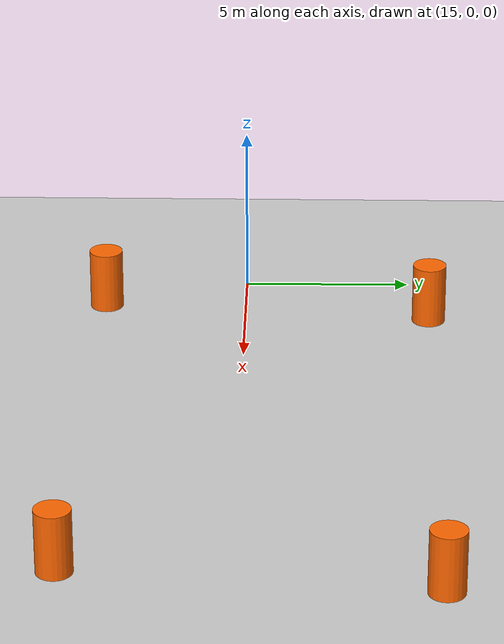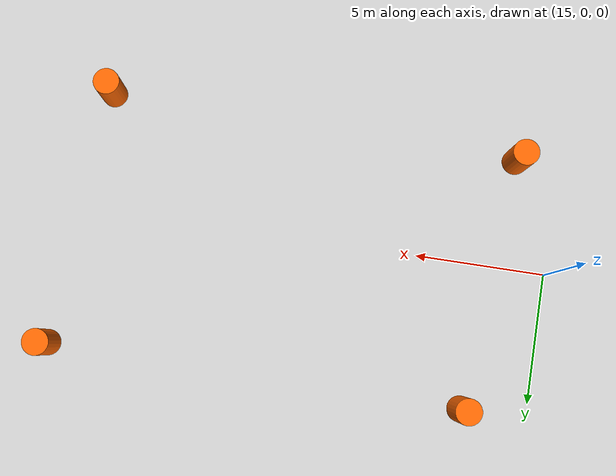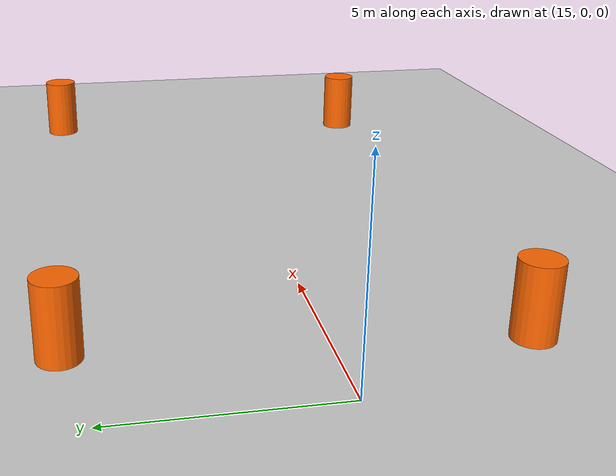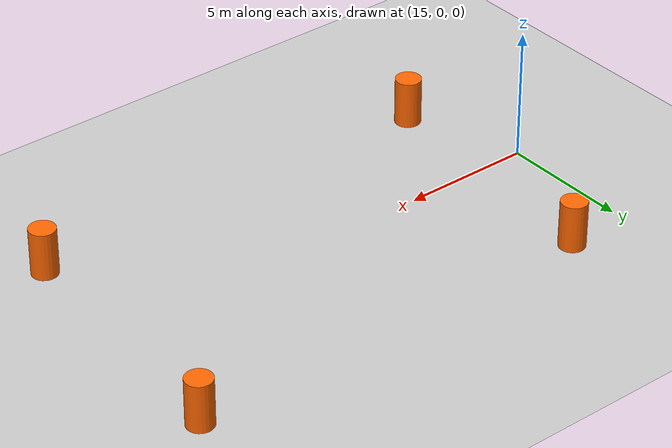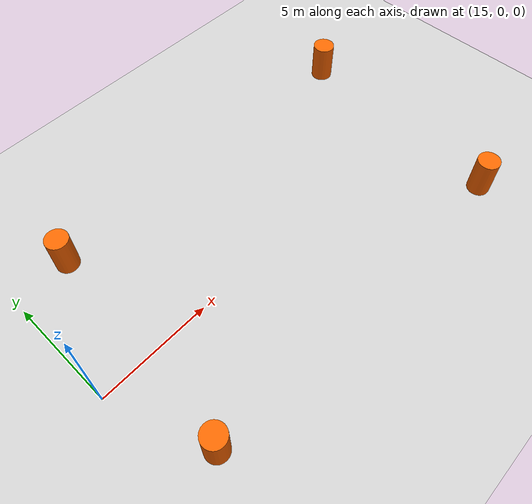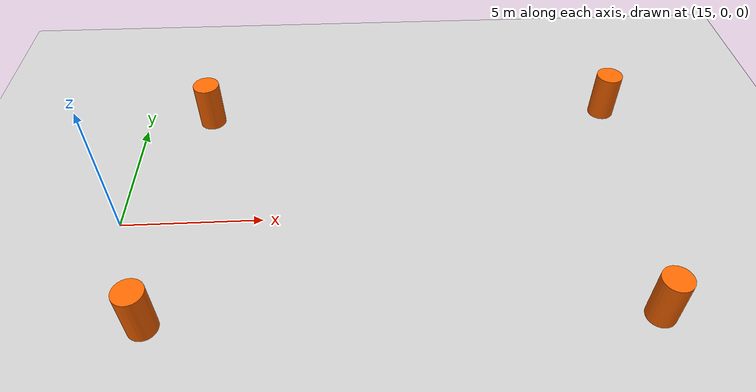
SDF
<sdf version="1.7">
 <world name="default">
  <light name="sun" type="directional">
   <pose>0 0 10 0 -0 0</pose>
   <diffuse>0.8 0.8 0.8 1</diffuse>
   <specular>0.2 0.2 0.2 1</specular>
   <attenuation>
    <range>1000</range>
    <constant>0.9</constant>
    <linear>0.01</linear>
    <quadratic>0.001</quadratic>
   </attenuation>
   <direction>-0.5 0.1 -0.9</direction>
   <spot><inner_angle>0</inner_angle><outer_angle>0</outer_angle><falloff>0</falloff></spot>
  </light>
  <model name="ground_plane">
   <static>1</static>
   <link name="link">
    <collision name="collision">
     <geometry><plane><normal>0 0 1</normal><size>100 100</size></plane></geometry>
     <surface>
      <contact><collide_bitmask>65535</collide_bitmask></contact>
      <friction><ode><mu>100</mu><mu2>50</mu2></ode></friction>
     </surface>
    </collision>
    <visual name="visual">
     <cast_shadows>0</cast_shadows>
     <geometry><plane><normal>0 0 1</normal><size>100 100</size></plane></geometry>
     <material>
      <script><uri>file://media/materials/scripts/gazebo.material</uri><name>Gazebo/Grey</name></script>
     </material>
    </visual>
   </link>
  </model>
  <gravity>0 0 -9.8</gravity>
  <magnetic_field>6e-06 2.3e-05 -4.2e-05</magnetic_field>
  <atmosphere type="adiabatic"/>
  <physics type="ode">
   <max_step_size>0.001</max_step_size>
   <real_time_factor>1</real_time_factor>
   <real_time_update_rate>1000</real_time_update_rate>
  </physics>
  <scene><ambient>0.4 0.4 0.4 1</ambient><background>0.7 0.7 0.7 1</background><shadows>1</shadows></scene>
  <audio><device>default</device></audio>
  <spherical_coordinates>
   <surface_model>EARTH_WGS84</surface_model>
   <latitude_deg>0</latitude_deg>
   <longitude_deg>0</longitude_deg>
   <elevation>0</elevation>
   <heading_deg>0</heading_deg>
  </spherical_coordinates>
  <model name="unit_cylinder">
   <pose>17.5352 5.57982 0.919527 0 0 -1e-06</pose>
   <link name="link">
    <inertial>
     <mass>1</mass>
     <inertia><ixx>0.145833</ixx><ixy>0</ixy><ixz>0</ixz><iyy>0.145833</iyy><iyz>0</iyz><izz>0.125</izz></inertia>
    </inertial>
    <collision name="collision">
     <geometry><cylinder><radius>0.5</radius><length>1.83907</length></cylinder></geometry>
    </collision>
    <visual name="visual">
     <geometry><cylinder><radius>0.5</radius><length>1.83907</length></cylinder></geometry>
     <material><diffuse>1 0.4 0 1</diffuse><specular>0.3 0.2 0.1 1</specular></material>
    </visual>
   </link>
  </model>
  <model name="unit_cylinder_clone">
   <pose>16.6538 -4.2826 0.919527 0 0 -1e-06</pose>
   <link name="link">
    <inertial>
     <mass>1</mass>
     <inertia><ixx>0.145833</ixx><ixy>0</ixy><ixz>0</ixz><iyy>0.145833</iyy><iyz>0</iyz><izz>0.125</izz></inertia>
    </inertial>
    <collision name="collision">
     <geometry><cylinder><radius>0.5</radius><length>1.83907</length></cylinder></geometry>
    </collision>
    <visual name="visual">
     <geometry><cylinder><radius>0.5</radius><length>1.83907</length></cylinder></geometry>
     <material><diffuse>1 0.4 0 1</diffuse><specular>0.3 0.2 0.1 1</specular></material>
    </visual>
   </link>
  </model>
  <model name="unit_cylinder_clone_clone">
   <pose>32.7171 -4.55793 0.919528 0 0 -1e-06</pose>
   <link name="link">
    <inertial>
     <mass>1</mass>
     <inertia><ixx>0.145833</ixx><ixy>0</ixy><ixz>0</ixz><iyy>0.145833</iyy><iyz>0</iyz><izz>0.125</izz></inertia>
    </inertial>
    <collision name="collision">
     <geometry><cylinder><radius>0.5</radius><length>1.83907</length></cylinder></geometry>
    </collision>
    <visual name="visual">
     <geometry><cylinder><radius>0.5</radius><length>1.83907</length></cylinder></geometry>
     <material><diffuse>1 0.4 0 1</diffuse><specular>0.3 0.2 0.1 1</specular></material>
    </visual>
   </link>
  </model>
  <model name="unit_cylinder_clone_0">
   <pose>33.5655 5.49627 0.919533 0 -0 -1e-06</pose>
   <link name="link">
    <inertial>
     <mass>1</mass>
     <inertia><ixx>0.145833</ixx><ixy>0</ixy><ixz>0</ixz><iyy>0.145833</iyy><iyz>0</iyz><izz>0.125</izz></inertia>
    </inertial>
    <collision name="collision">
     <geometry><cylinder><radius>0.5</radius><length>1.83907</length></cylinder></geometry>
    </collision>
    <visual name="visual">
     <geometry><cylinder><radius>0.5</radius><length>1.83907</length></cylinder></geometry>
     <material><diffuse>1 0.4 0 1</diffuse><specular>0.3 0.2 0.1 1</specular></material>
    </visual>
   </link>
  </model>
 </world>
</sdf>
